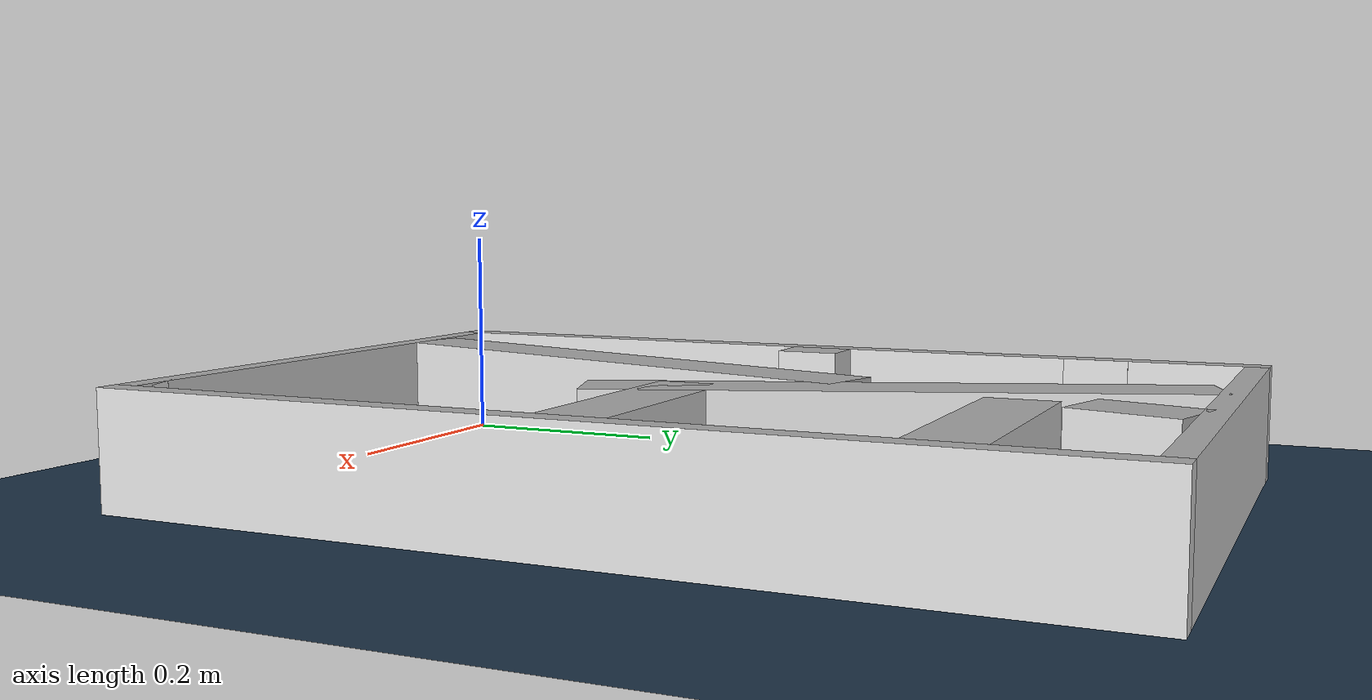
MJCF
<?xml version="1.0" ?>
<mujoco model="generated_real_template">
  <compiler angle="degree"/>
  <option timestep="0.002" integrator="implicitfast" iterations="100" cone="elliptic"/>
  <default>
    <geom density="1"/>
  </default>
  <asset>
    <texture builtin="gradient" height="3072" rgb1="0.3 0.5 0.7" rgb2="0 0 0" type="skybox" width="512"/>
    <texture builtin="checker" height="300" mark="edge" markrgb="0.8 0.8 0.8" name="groundplane" rgb1="0.2 0.3 0.4" rgb2="0.1 0.2 0.3" type="2d" width="300"/>
    <material name="groundplane" reflectance="0.2" texrepeat="5 5" texture="groundplane" texuniform="true"/>
  </asset>
  <worldbody>
    <light dir="0 0 -1" directional="true" pos="0 0 1.5"/>
    <geom name="floor" type="plane" condim="4" friction="0.5 0.005 0.001" material="groundplane" size="0 0 0.05"/>
    <body name="walls">
      <geom name="wall_boundary_left" type="box" condim="4" friction="1.0 0.005 0.0001" rgba="0.8 0.8 0.8 1" pos="-0.010000 0.387500 0.050000" euler="0 0 0.000000" size="0.010000 0.407500 0.050000"/>
      <geom name="wall_boundary_right" type="box" condim="4" friction="1.0 0.005 0.0001" rgba="0.8 0.8 0.8 1" pos="0.500000 0.387500 0.050000" euler="0 0 0.000000" size="0.010000 0.407500 0.050000"/>
      <geom name="wall_boundary_bottom" type="box" condim="4" friction="1.0 0.005 0.0001" rgba="0.8 0.8 0.8 1" pos="0.245000 -0.010000 0.050000" euler="0 0 0.000000" size="0.245000 0.010000 0.050000"/>
      <geom name="wall_boundary_top" type="box" condim="4" friction="1.0 0.005 0.0001" rgba="0.8 0.8 0.8 1" pos="0.245000 0.785000 0.050000" euler="0 0 0.000000" size="0.245000 0.010000 0.050000"/>
      <geom name="wall_inner_1_1" type="box" condim="4" friction="1.0 0.005 0.0001" rgba="0.8 0.8 0.8 1" pos="0.000167 0.647397 0.050000" euler="0 0 0.000000" size="0.000167 0.028500 0.050000"/>
      <geom name="wall_inner_1_2" type="box" condim="4" friction="1.0 0.005 0.0001" rgba="0.8 0.8 0.8 1" pos="0.387069 0.647397 0.050000" euler="0 0 0.000000" size="0.102931 0.028500 0.050000"/>
      <geom name="wall_inner_2_1" type="box" condim="4" friction="1.0 0.005 0.0001" rgba="0.8 0.8 0.8 1" pos="0.021358 0.387257 0.050000" euler="0 0 0.000000" size="0.021358 0.028500 0.050000"/>
      <geom name="wall_inner_2_2" type="box" condim="4" friction="1.0 0.005 0.0001" rgba="0.8 0.8 0.8 1" pos="0.392294 0.387257 0.050000" euler="0 0 0.000000" size="0.097706 0.028500 0.050000"/>
      <geom name="wall_inner_3_1" type="box" condim="4" friction="1.0 0.005 0.0001" rgba="0.8 0.8 0.8 1" pos="0.455802 0.000066 0.050000" euler="0 0 110.357203" size="0.000070 0.028500 0.050000"/>
      <geom name="wall_inner_3_2" type="box" condim="4" friction="1.0 0.005 0.0001" rgba="0.8 0.8 0.8 1" pos="0.253950 0.544074 0.050000" euler="0 0 110.357203" size="0.246310 0.028500 0.050000"/>
      <geom name="wall_inner_4_1" type="box" condim="4" friction="1.0 0.005 0.0001" rgba="0.8 0.8 0.8 1" pos="0.159589 0.248314 0.050000" euler="0 0 73.990563" size="0.258333 0.028500 0.050000"/>
      <geom name="wall_inner_4_2" type="box" condim="4" friction="1.0 0.005 0.0001" rgba="0.8 0.8 0.8 1" pos="0.298554 0.732640 0.050000" euler="0 0 73.990563" size="0.044069 0.028500 0.050000"/>
    </body>
  </worldbody>
</mujoco>
